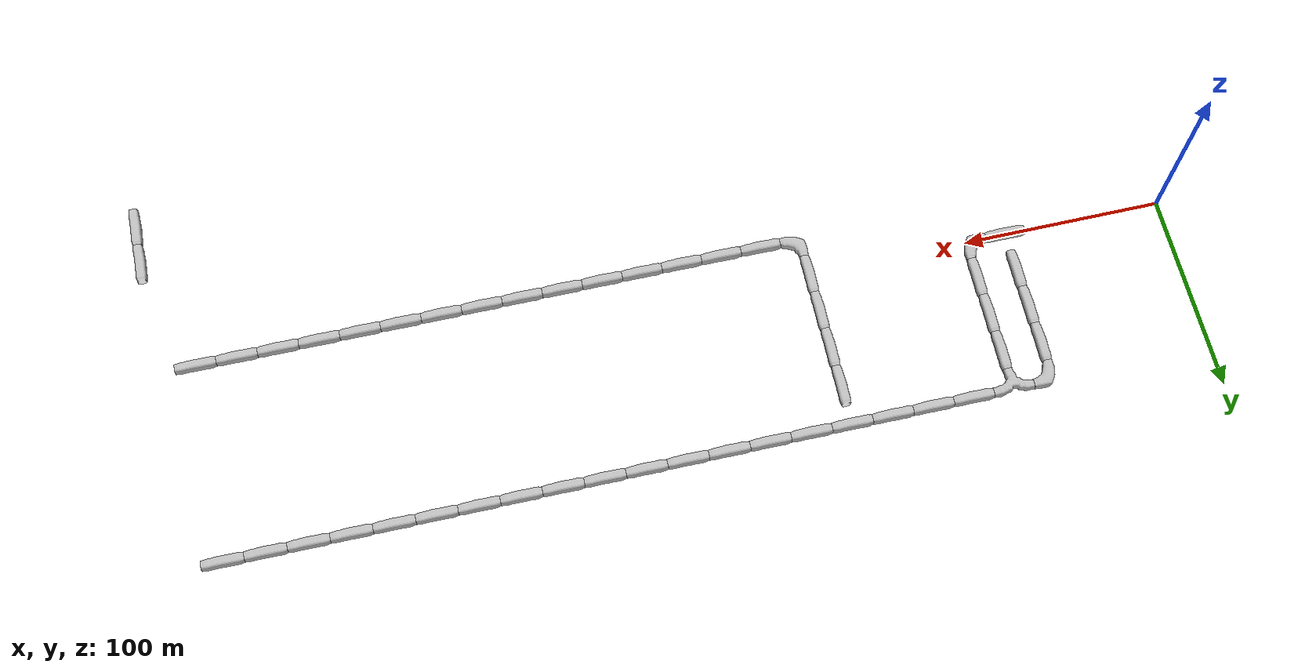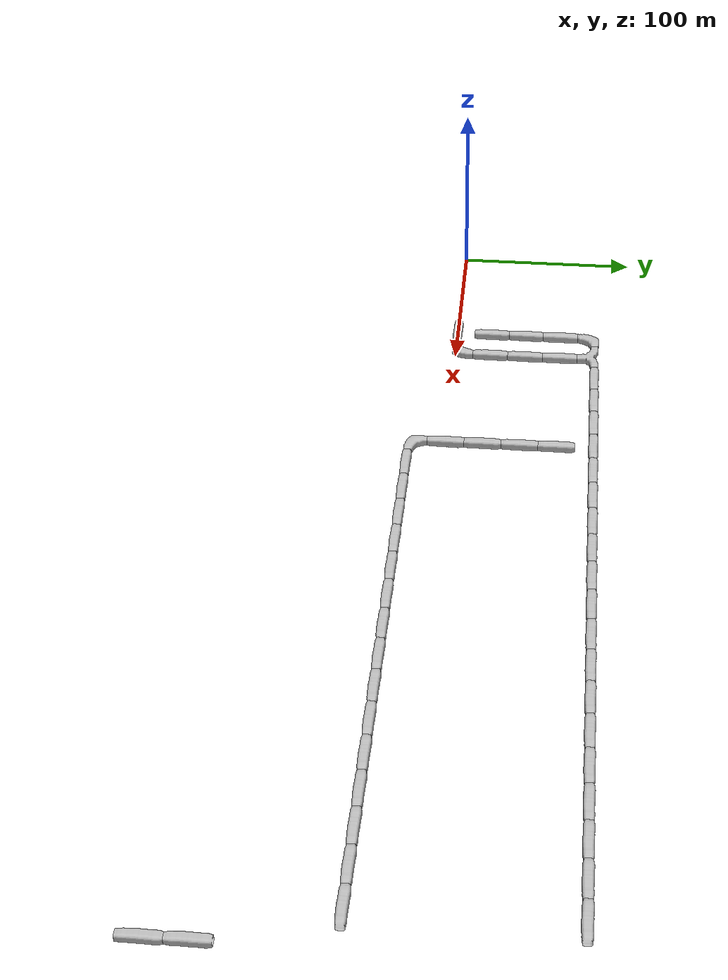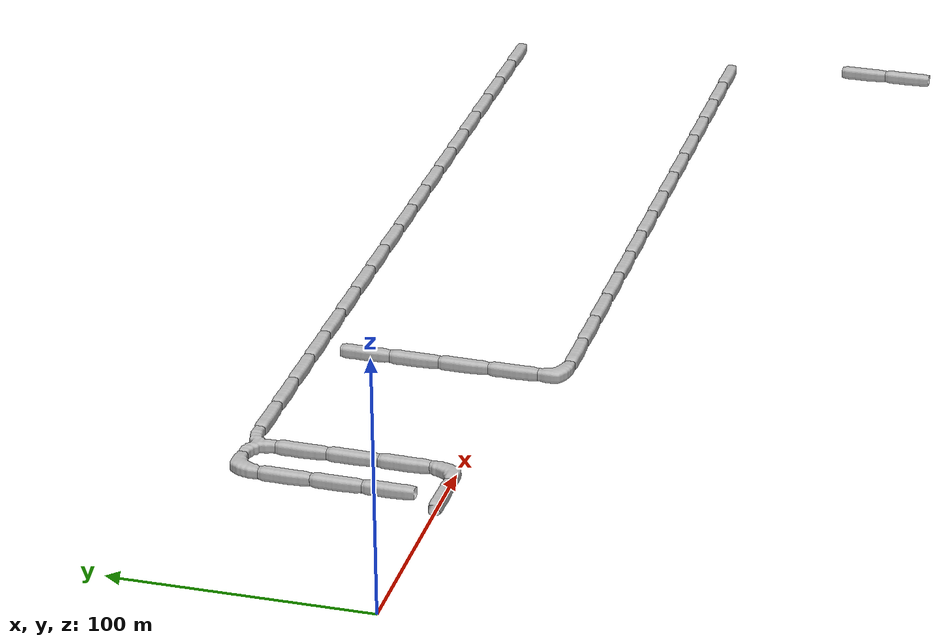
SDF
<sdf version="1.6">
 <world name="cave_16000_4">
  <include>
   <static>true</static>
   <name>cave_4_0</name>
   <pose>80 0 0 0 0 1.5707963267948966</pose>
   <uri>model://cave_straight_20m</uri>
  </include>
  <include>
   <static>true</static>
   <name>cave_5_0</name>
   <pose>100 0 0 0 0 1.5707963267948966</pose>
   <uri>model://cave_L_20m</uri>
  </include>
  <include>
   <static>true</static>
   <name>cave_5_1</name>
   <pose>100 20 0 0 0 0.0</pose>
   <uri>model://cave_straight_20m</uri>
  </include>
  <include>
   <static>true</static>
   <name>cave_5_2</name>
   <pose>100 40 0 0 0 0.0</pose>
   <uri>model://cave_straight_20m</uri>
  </include>
  <include>
   <static>true</static>
   <name>cave_5_3</name>
   <pose>100 60 0 0 0 0.0</pose>
   <uri>model://cave_straight_20m</uri>
  </include>
  <include>
   <static>true</static>
   <name>cave_5_4</name>
   <pose>100 80 0 0 0 3.141592653589793</pose>
   <uri>model://cave_3way_20m</uri>
  </include>
  <include>
   <static>true</static>
   <name>cave_6_4</name>
   <pose>120 80 0 0 0 1.5707963267948966</pose>
   <uri>model://cave_straight_20m</uri>
  </include>
  <include>
   <static>true</static>
   <name>cave_7_4</name>
   <pose>140 80 0 0 0 1.5707963267948966</pose>
   <uri>model://cave_straight_20m</uri>
  </include>
  <include>
   <static>true</static>
   <name>cave_8_4</name>
   <pose>160 80 0 0 0 1.5707963267948966</pose>
   <uri>model://cave_straight_20m</uri>
  </include>
  <include>
   <static>true</static>
   <name>cave_9_4</name>
   <pose>180 80 0 0 0 1.5707963267948966</pose>
   <uri>model://cave_straight_20m</uri>
  </include>
  <include>
   <static>true</static>
   <name>cave_10_4</name>
   <pose>200 80 0 0 0 1.5707963267948966</pose>
   <uri>model://cave_straight_20m</uri>
  </include>
  <include>
   <static>true</static>
   <name>cave_11_4</name>
   <pose>220 80 0 0 0 1.5707963267948966</pose>
   <uri>model://cave_straight_20m</uri>
  </include>
  <include>
   <static>true</static>
   <name>cave_12_4</name>
   <pose>240 80 0 0 0 1.5707963267948966</pose>
   <uri>model://cave_straight_20m</uri>
  </include>
  <include>
   <static>true</static>
   <name>cave_13_4</name>
   <pose>260 80 0 0 0 1.5707963267948966</pose>
   <uri>model://cave_straight_20m</uri>
  </include>
  <include>
   <static>true</static>
   <name>cave_14_4</name>
   <pose>280 80 0 0 0 1.5707963267948966</pose>
   <uri>model://cave_straight_20m</uri>
  </include>
  <include>
   <static>true</static>
   <name>cave_15_4</name>
   <pose>300 80 0 0 0 1.5707963267948966</pose>
   <uri>model://cave_straight_20m</uri>
  </include>
  <include>
   <static>true</static>
   <name>cave_16_4</name>
   <pose>320 80 0 0 0 1.5707963267948966</pose>
   <uri>model://cave_straight_20m</uri>
  </include>
  <include>
   <static>true</static>
   <name>cave_17_4</name>
   <pose>340 80 0 0 0 1.5707963267948966</pose>
   <uri>model://cave_straight_20m</uri>
  </include>
  <include>
   <static>true</static>
   <name>cave_18_4</name>
   <pose>360 80 0 0 0 1.5707963267948966</pose>
   <uri>model://cave_straight_20m</uri>
  </include>
  <include>
   <static>true</static>
   <name>cave_19_4</name>
   <pose>380 80 0 0 0 1.5707963267948966</pose>
   <uri>model://cave_straight_20m</uri>
  </include>
  <include>
   <static>true</static>
   <name>cave_20_4</name>
   <pose>400 80 0 0 0 1.5707963267948966</pose>
   <uri>model://cave_straight_20m</uri>
  </include>
  <include>
   <static>true</static>
   <name>cave_21_4</name>
   <pose>420 80 0 0 0 1.5707963267948966</pose>
   <uri>model://cave_straight_20m</uri>
  </include>
  <include>
   <static>true</static>
   <name>cave_22_4</name>
   <pose>440 80 0 0 0 1.5707963267948966</pose>
   <uri>model://cave_straight_20m</uri>
  </include>
  <include>
   <static>true</static>
   <name>cave_23_4</name>
   <pose>460 80 0 0 0 1.5707963267948966</pose>
   <uri>model://cave_straight_20m</uri>
  </include>
  <include>
   <static>true</static>
   <name>cave_24_4</name>
   <pose>480 80 0 0 0 1.5707963267948966</pose>
   <uri>model://cave_straight_20m</uri>
  </include>
  <include>
   <static>true</static>
   <name>cave_25_-5</name>
   <pose>500 -100 0 0 0 0.0</pose>
   <uri>model://cave_straight_20m</uri>
  </include>
  <include>
   <static>true</static>
   <name>cave_25_-4</name>
   <pose>500 -80 0 0 0 0.0</pose>
   <uri>model://cave_straight_20m</uri>
  </include>
  <include>
   <static>true</static>
   <name>cave_24_-1</name>
   <pose>480 -20 0 0 0 1.5707963267948966</pose>
   <uri>model://cave_straight_20m</uri>
  </include>
  <include>
   <static>true</static>
   <name>cave_23_-1</name>
   <pose>460 -20 0 0 0 1.5707963267948966</pose>
   <uri>model://cave_straight_20m</uri>
  </include>
  <include>
   <static>true</static>
   <name>cave_22_-1</name>
   <pose>440 -20 0 0 0 1.5707963267948966</pose>
   <uri>model://cave_straight_20m</uri>
  </include>
  <include>
   <static>true</static>
   <name>cave_21_-1</name>
   <pose>420 -20 0 0 0 1.5707963267948966</pose>
   <uri>model://cave_straight_20m</uri>
  </include>
  <include>
   <static>true</static>
   <name>cave_20_-1</name>
   <pose>400 -20 0 0 0 1.5707963267948966</pose>
   <uri>model://cave_straight_20m</uri>
  </include>
  <include>
   <static>true</static>
   <name>cave_19_-1</name>
   <pose>380 -20 0 0 0 1.5707963267948966</pose>
   <uri>model://cave_straight_20m</uri>
  </include>
  <include>
   <static>true</static>
   <name>cave_18_-1</name>
   <pose>360 -20 0 0 0 1.5707963267948966</pose>
   <uri>model://cave_straight_20m</uri>
  </include>
  <include>
   <static>true</static>
   <name>cave_17_-1</name>
   <pose>340 -20 0 0 0 1.5707963267948966</pose>
   <uri>model://cave_straight_20m</uri>
  </include>
  <include>
   <static>true</static>
   <name>cave_16_-1</name>
   <pose>320 -20 0 0 0 1.5707963267948966</pose>
   <uri>model://cave_straight_20m</uri>
  </include>
  <include>
   <static>true</static>
   <name>cave_15_-1</name>
   <pose>300 -20 0 0 0 1.5707963267948966</pose>
   <uri>model://cave_straight_20m</uri>
  </include>
  <include>
   <static>true</static>
   <name>cave_14_-1</name>
   <pose>280 -20 0 0 0 1.5707963267948966</pose>
   <uri>model://cave_straight_20m</uri>
  </include>
  <include>
   <static>true</static>
   <name>cave_13_-1</name>
   <pose>260 -20 0 0 0 1.5707963267948966</pose>
   <uri>model://cave_straight_20m</uri>
  </include>
  <include>
   <static>true</static>
   <name>cave_12_-1</name>
   <pose>240 -20 0 0 0 1.5707963267948966</pose>
   <uri>model://cave_straight_20m</uri>
  </include>
  <include>
   <static>true</static>
   <name>cave_11_-1</name>
   <pose>220 -20 0 0 0 1.5707963267948966</pose>
   <uri>model://cave_straight_20m</uri>
  </include>
  <include>
   <static>true</static>
   <name>cave_10_-1</name>
   <pose>200 -20 0 0 0 1.5707963267948966</pose>
   <uri>model://cave_straight_20m</uri>
  </include>
  <include>
   <static>true</static>
   <name>cave_9_-1</name>
   <pose>180 -20 0 0 0 0.0</pose>
   <uri>model://cave_L_20m</uri>
  </include>
  <include>
   <static>true</static>
   <name>cave_9_0</name>
   <pose>180 0 0 0 0 0.0</pose>
   <uri>model://cave_straight_20m</uri>
  </include>
  <include>
   <static>true</static>
   <name>cave_9_1</name>
   <pose>180 20 0 0 0 0.0</pose>
   <uri>model://cave_straight_20m</uri>
  </include>
  <include>
   <static>true</static>
   <name>cave_9_2</name>
   <pose>180 40 0 0 0 0.0</pose>
   <uri>model://cave_straight_20m</uri>
  </include>
  <include>
   <static>true</static>
   <name>cave_9_3</name>
   <pose>180 60 0 0 0 0.0</pose>
   <uri>model://cave_straight_20m</uri>
  </include>
  <include>
   <static>true</static>
   <name>cave_4_4</name>
   <pose>80 80 0 0 0 -1.5707963267948966</pose>
   <uri>model://cave_L_20m</uri>
  </include>
  <include>
   <static>true</static>
   <name>cave_4_3</name>
   <pose>80 60 0 0 0 0.0</pose>
   <uri>model://cave_straight_20m</uri>
  </include>
  <include>
   <static>true</static>
   <name>cave_4_2</name>
   <pose>80 40 0 0 0 0.0</pose>
   <uri>model://cave_straight_20m</uri>
  </include>
  <include>
   <static>true</static>
   <name>cave_4_1</name>
   <pose>80 20 0 0 0 0.0</pose>
   <uri>model://cave_straight_20m</uri>
  </include>
 </world>
</sdf>
